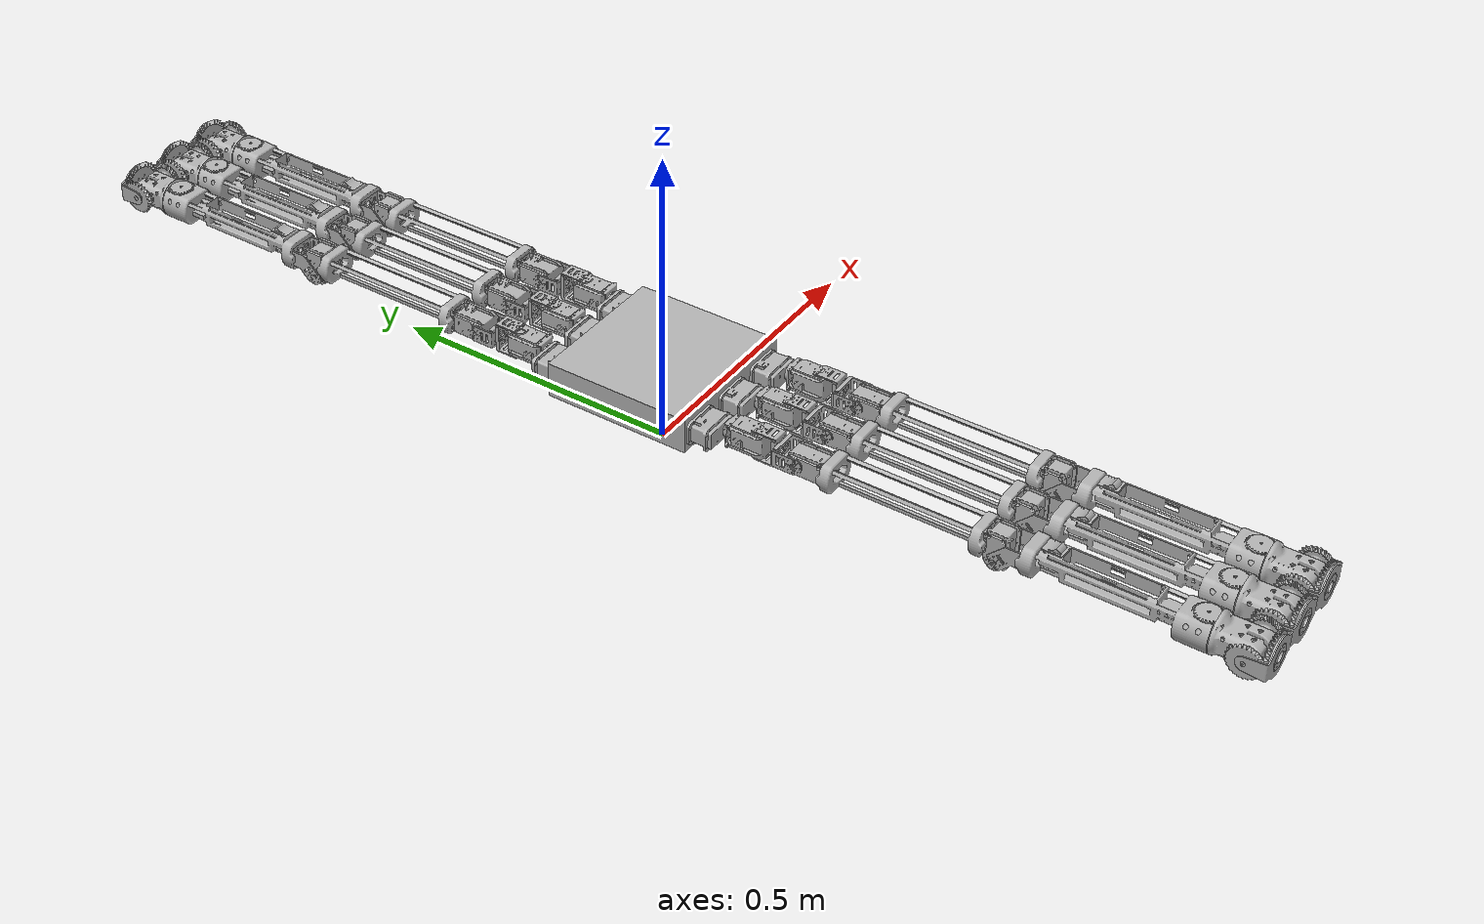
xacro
<?xml version="1.0" ?>
<robot name="romerin" xmlns:xacro="http://www.ros.org/wiki/xacro">

<xacro:include filename="$(find romerin_description)/urdf/materials.xacro" />
<xacro:include filename="$(find romerin_description)/urdf/macros.xacro" />
<xacro:include filename="$(find romerin_description)/urdf/pata.xacro" />
<xacro:include filename="$(find romerin_description)/urdf/cuerpo.xacro" />
<xacro:include filename="$(find romerin_description)/urdf/romerin.gazebo" />
<!--xacro:include filename="$(find romerin_description)/urdf/romerin.trans" /-->
	<!--romerin.trans no se incluye porque su codigo se ha pegado en pata.xacro-->

<!-- Used for fixing robot to Gazebo 'base_link (frame reference)' -->
<link name="base_link"/>

<!-- Body -->
<xacro:body parent="base_link" child="cuerpo"/>

<!--Legs-->
<xacro:pata lr="r" num="1"/>
<xacro:pata lr="r" num="2"/>
<xacro:pata lr="r" num="3"/>
<xacro:pata lr="l" num="1"/>
<xacro:pata lr="l" num="2"/>
<xacro:pata lr="l" num="3"/>

</robot>

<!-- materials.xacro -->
<robot name="romerin" xmlns:xacro="http://www.ros.org/wiki/xacro" >

<material name="silver">
  <color rgba="0.700 0.700 0.700 1.000"/>
</material>

</robot>

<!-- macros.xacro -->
<robot name="centipede" xmlns:xacro="http://www.ros.org/wiki/xacro">

	<xacro:macro name="body" params="parent child">
		<joint name="fixed" type="fixed">
  			<origin rpy="0 0 0" xyz="0 0 0.1"/>
    		<parent link="${parent}"/>
    	    <child link="${child}"/>
		</joint>
	</xacro:macro>

</robot>

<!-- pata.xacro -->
<robot name="pata" xmlns:xacro="http://www.ros.org/wiki/xacro">

<!--xacro:include filename="$(find patacuerpo_description)/urdf/patacuerpo.trans" /-->

<xacro:property name="PI" value="3.1415926535897931"/>

<xacro:macro name="pata" params="lr num">
	<!--lr: izda o dcha; num: n de pata-->

<link name="enganche_${lr}_${num}">
  <inertial>
	<origin rpy="0 0 0" xyz="-0.0008835638202414636 -0.023026438950210004 7.162326287613041e-14"/>
	<mass value="0.6779958201620729"/>
	<inertia ixx="0.000178" ixy="2e-06" ixz="-0.0" iyy="0.000263" iyz="0.0" izz="0.000323"/>
  </inertial>
  <visual>
	<origin rpy="0 0 0" xyz="-7.5e-05 0.119 -0.03"/>
	<geometry>
	  <mesh filename="package://patacuerpo_description/meshes/enganche_1.stl" scale="0.001 0.001 0.001"/>
	</geometry>
	<material name="silver"/>
  </visual>
  <collision>
	<origin rpy="0 0 0" xyz="-7.5e-05 0.119 -0.03"/>
	<geometry>
	  <mesh filename="package://patacuerpo_description/meshes/enganche_1.stl" scale="0.001 0.001 0.001"/>
	</geometry>
  </collision>
</link>

<link name="Component2_${lr}_${num}">
  <inertial>
	<origin rpy="0 0 0" xyz="-3.327743548876133e-06 -0.003686600354462388 -0.0006153217354371195"/>
	<mass value="0.04057327410573066"/>
	<inertia ixx="3e-06" ixy="-0.0" ixz="0.0" iyy="8e-06" iyz="-0.0" izz="6e-06"/>
  </inertial>
  <visual>
	<origin rpy="0 0 0" xyz="-0.015325 0.1662 -0.03"/>
	<geometry>
	  <mesh filename="package://patacuerpo_description/meshes/Component2_1.stl" scale="0.001 0.001 0.001"/>
	</geometry>
	<material name="silver"/>
  </visual>
  <collision>
	<origin rpy="0 0 0" xyz="-0.015325 0.1662 -0.03"/>
	<geometry>
	  <mesh filename="package://patacuerpo_description/meshes/Component2_1.stl" scale="0.001 0.001 0.001"/>
	</geometry>
  </collision>
</link>

<link name="Component3_${lr}_${num}">
  <inertial>
	<origin rpy="0 0 0" xyz="0.017082566975035966 -0.030175162564449715 -0.011000062135107003"/>
	<mass value="0.5890018112407169"/>
	<inertia ixx="0.000207" ixy="-3e-06" ixz="-0.0" iyy="0.000143" iyz="-0.0" izz="0.000248"/>
  </inertial>
  <visual>
	<origin rpy="0 0 0" xyz="0.001664 0.1762 -0.041"/>
	<geometry>
	  <mesh filename="package://patacuerpo_description/meshes/Component3_1.stl" scale="0.001 0.001 0.001"/>
	</geometry>
	<material name="silver"/>
  </visual>
  <collision>
	<origin rpy="0 0 0" xyz="0.001664 0.1762 -0.041"/>
	<geometry>
	  <mesh filename="package://patacuerpo_description/meshes/Component3_1.stl" scale="0.001 0.001 0.001"/>
	</geometry>
  </collision>
</link>

<link name="Component4_${lr}_${num}">
  <inertial>
	<origin rpy="0 0 0" xyz="0.023500272152248945 -0.02564620791836894 -1.8395030568219006e-09"/>
	<mass value="0.05208378573426527"/>
	<inertia ixx="1.3e-05" ixy="0.0" ixz="0.0" iyy="2.6e-05" iyz="-0.0" izz="2.7e-05"/>
  </inertial>
  <visual>
	<origin rpy="0 0 0" xyz="0.008164 0.2215 -0.03"/>
	<geometry>
	  <mesh filename="package://patacuerpo_description/meshes/Component4_1.stl" scale="0.001 0.001 0.001"/>
	</geometry>
	<material name="silver"/>
  </visual>
  <collision>
	<origin rpy="0 0 0" xyz="0.008164 0.2215 -0.03"/>
	<geometry>
	  <mesh filename="package://patacuerpo_description/meshes/Component4_1.stl" scale="0.001 0.001 0.001"/>
	</geometry>
  </collision>
</link>

<link name="Component5_${lr}_${num}">
  <inertial>
	<origin rpy="0 0 0" xyz="2.7321655199363803e-07 -0.010353792081704394 7.750037417375566e-10"/>
	<mass value="0.05208378573425636"/>
	<inertia ixx="2.7e-05" ixy="-0.0" ixz="-0.0" iyy="2.6e-05" iyz="-0.0" izz="1.3e-05"/>
  </inertial>
  <visual>
	<origin rpy="0 0 0" xyz="-0.015336 0.2575 -0.03"/>
	<geometry>
	  <mesh filename="package://patacuerpo_description/meshes/Component5_1.stl" scale="0.001 0.001 0.001"/>
	</geometry>
	<material name="silver"/>
  </visual>
  <collision>
	<origin rpy="0 0 0" xyz="-0.015336 0.2575 -0.03"/>
	<geometry>
	  <mesh filename="package://patacuerpo_description/meshes/Component5_1.stl" scale="0.001 0.001 0.001"/>
	</geometry>
  </collision>
</link>

<link name="Component6_${lr}_${num}">
  <inertial>
	<origin rpy="0 0 0" xyz="2.7175869793220897e-07 -0.015124778672136407 -0.023582296616284523"/>
	<mass value="0.5890018112407189"/>
	<inertia ixx="0.000248" ixy="0.0" ixz="0.0" iyy="0.000143" iyz="-3e-06" izz="0.000207"/>
  </inertial>
  <visual>
	<origin rpy="0 0 0" xyz="-0.015336 0.2935 -0.0535"/>
	<geometry>
	  <mesh filename="package://patacuerpo_description/meshes/Component6_1.stl" scale="0.001 0.001 0.001"/>
	</geometry>
	<material name="silver"/>
  </visual>
  <collision>
	<origin rpy="0 0 0" xyz="-0.015336 0.2935 -0.0535"/>
	<geometry>
	  <mesh filename="package://patacuerpo_description/meshes/Component6_1.stl" scale="0.001 0.001 0.001"/>
	</geometry>
  </collision>
</link>

<link name="Component7_${lr}_${num}">
  <inertial>
	<origin rpy="0 0 0" xyz="0.009679299327890243 -0.13369995640458926 0.016988725070571378"/>
	<mass value="0.8047904243141957"/>
	<inertia ixx="0.010342" ixy="-0.0" ixz="0.0" iyy="0.000455" iyz="0.0" izz="0.010228"/>
  </inertial>
  <visual>
	<origin rpy="0 0 0" xyz="-0.004336 0.3388 -0.013"/>
	<geometry>
	  <mesh filename="package://patacuerpo_description/meshes/Component7_1.stl" scale="0.001 0.001 0.001"/>
	</geometry>
	<material name="silver"/>
  </visual>
  <collision>
	<origin rpy="0 0 0" xyz="-0.004336 0.3388 -0.013"/>
	<geometry>
	  <mesh filename="package://patacuerpo_description/meshes/Component7_1.stl" scale="0.001 0.001 0.001"/>
	</geometry>
  </collision>
</link>

<link name="Component8_${lr}_${num}">
  <inertial>
	<origin rpy="0 0 0" xyz="0.024875371372866634 -0.017300001288044542 -0.017039615317225636"/>
	<mass value="0.5890018112407238"/>
	<inertia ixx="0.000143" ixy="0.0" ixz="-3e-06" iyy="0.000248" iyz="-0.0" izz="0.000207"/>
  </inertial>
  <visual>
	<origin rpy="0 0 0" xyz="0.002664 0.6062 -0.046977"/>
	<geometry>
	  <mesh filename="package://patacuerpo_description/meshes/Component8_1.stl" scale="0.001 0.001 0.001"/>
	</geometry>
	<material name="silver"/>
  </visual>
  <collision>
	<origin rpy="0 0 0" xyz="0.002664 0.6062 -0.046977"/>
	<geometry>
	  <mesh filename="package://patacuerpo_description/meshes/Component8_1.stl" scale="0.001 0.001 0.001"/>
	</geometry>
  </collision>
</link>

<link name="Component9_${lr}_${num}">
  <inertial>
	<origin rpy="0 0 0" xyz="-0.01880335468036301 -0.030302739995931915 0.023500457245787268"/>
	<mass value="0.07064606392588994"/>
	<inertia ixx="5.1e-05" ixy="-5e-06" ixz="-0.0" iyy="4.1e-05" iyz="0.0" izz="2.9e-05"/>
  </inertial>
  <visual>
	<origin rpy="0 0 0" xyz="-0.037336 0.6235 -0.007977"/>
	<geometry>
	  <mesh filename="package://patacuerpo_description/meshes/Component9_1.stl" scale="0.001 0.001 0.001"/>
	</geometry>
	<material name="silver"/>
  </visual>
  <collision>
	<origin rpy="0 0 0" xyz="-0.037336 0.6235 -0.007977"/>
	<geometry>
	  <mesh filename="package://patacuerpo_description/meshes/Component9_1.stl" scale="0.001 0.001 0.001"/>
	</geometry>
  </collision>
</link>

<link name="Component10_${lr}_${num}">
  <inertial>
	<origin rpy="0 0 0" xyz="-0.0017135454980912197 -0.15691041401299965 -0.0007575519701589137"/>
	<mass value="1.969918180322282"/>
	<inertia ixx="0.021818" ixy="0.000391" ixz="3e-06" iyy="0.000894" iyz="-0.000131" izz="0.021632"/>
  </inertial>
  <visual>
	<origin rpy="0 0 0" xyz="-0.015336 0.6715 -0.031477"/>
	<geometry>
	  <mesh filename="package://patacuerpo_description/meshes/Component10_1.stl" scale="0.001 0.001 0.001"/>
	</geometry>
	<material name="silver"/>
  </visual>
  <collision>
	<origin rpy="0 0 0" xyz="-0.015336 0.6715 -0.031477"/>
	<geometry>
	  <mesh filename="package://patacuerpo_description/meshes/Component10_1.stl" scale="0.001 0.001 0.001"/>
	</geometry>
  </collision>
</link>

<link name="Component11_${lr}_${num}">
  <inertial>
	<origin rpy="0 0 0" xyz="0.007623821851629745 -2.9323939987335734e-07 -2.1019877097794293e-06"/>
	<mass value="0.04831387336471295"/>
	<inertia ixx="7e-06" ixy="-0.0" ixz="-0.0" iyy="5e-06" iyz="-0.0" izz="5e-06"/>
  </inertial>
  <visual>
	<origin rpy="0 0 0" xyz="-0.0307 0.932519 -0.030023"/>
	<geometry>
	  <mesh filename="package://patacuerpo_description/meshes/Component11_1.stl" scale="0.001 0.001 0.001"/>
	</geometry>
	<material name="silver"/>
  </visual>
  <collision>
	<origin rpy="0 0 0" xyz="-0.0307 0.932519 -0.030023"/>
	<geometry>
	  <mesh filename="package://patacuerpo_description/meshes/Component11_1.stl" scale="0.001 0.001 0.001"/>
	</geometry>
  </collision>
</link>

<link name="Component13_${lr}_${num}">
  <inertial>
	<origin rpy="0 0 0" xyz="-7.046964762767727e-05 -0.025651671856746106 -8.711431092059407e-06"/>
	<mass value="0.9228320571083133"/>
	<inertia ixx="0.00065" ixy="-1e-06" ixz="0.0" iyy="0.000398" iyz="0.0" izz="0.000533"/>
  </inertial>
  <visual>
	<origin rpy="0 0 0" xyz="-0.015336 0.956561 -0.030023"/>
	<geometry>
	  <mesh filename="package://patacuerpo_description/meshes/Component13_1.stl" scale="0.001 0.001 0.001"/>
	</geometry>
	<material name="silver"/>
  </visual>
  <collision>
	<origin rpy="0 0 0" xyz="-0.015336 0.956561 -0.030023"/>
	<geometry>
	  <mesh filename="package://patacuerpo_description/meshes/Component13_1.stl" scale="0.001 0.001 0.001"/>
	</geometry>
  </collision>
</link>

<link name="Component14_${lr}_${num}">
  <inertial>
	<origin rpy="0 0 0" xyz="-1.0024119439892842e-07 -1.2555316453166654e-07 -0.0016568293364659743"/>
	<mass value="0.11553702060403329"/>
	<inertia ixx="2.9e-05" ixy="-0.0" ixz="-0.0" iyy="2.9e-05" iyz="0.0" izz="3.6e-05"/>
  </inertial>
  <visual>
	<origin rpy="0 0 0" xyz="-0.01507 1.002493 0.001477"/>
	<geometry>
	  <mesh filename="package://patacuerpo_description/meshes/Component14_1.stl" scale="0.001 0.001 0.001"/>
	</geometry>
	<material name="silver"/>
  </visual>
  <collision>
	<origin rpy="0 0 0" xyz="-0.01507 1.002493 0.001477"/>
	<geometry>
	  <mesh filename="package://patacuerpo_description/meshes/Component14_1.stl" scale="0.001 0.001 0.001"/>
	</geometry>
  </collision>
</link>

<link name="Component17_${lr}_${num}">
  <inertial>
	<origin rpy="0 0 0" xyz="-1.2322251817693808e-07 0.003859592424359626 -4.557914220180981e-07"/>
	<mass value="0.22106688110468858"/>
	<inertia ixx="6.7e-05" ixy="0.0" ixz="-0.0" iyy="0.000129" iyz="-0.0" izz="6.7e-05"/>
  </inertial>
  <visual>
	<origin rpy="0 0 0" xyz="-0.01507 1.035027 -0.030023"/>
	<geometry>
	  <mesh filename="package://patacuerpo_description/meshes/Component17_1.stl" scale="0.001 0.001 0.001"/>
	</geometry>
	<material name="silver"/>
  </visual>
  <collision>
	<origin rpy="0 0 0" xyz="-0.01507 1.035027 -0.030023"/>
	<geometry>
	  <mesh filename="package://patacuerpo_description/meshes/Component17_1.stl" scale="0.001 0.001 0.001"/>
	</geometry>
  </collision>
</link>

<link name="Component12_${lr}_${num}">
  <inertial>
	<origin rpy="0 0 0" xyz="-0.0018786122979095599 3.870314608800385e-07 1.0481699663222876e-06"/>
	<mass value="0.044964172872987526"/>
	<inertia ixx="7e-06" ixy="0.0" ixz="-0.0" iyy="4e-06" iyz="0.0" izz="4e-06"/>
  </inertial>
  <visual>
	<origin rpy="0 0 0" xyz="0.007027 0.932502 -0.030032"/>
	<geometry>
	  <mesh filename="package://patacuerpo_description/meshes/Component12_1.stl" scale="0.001 0.001 0.001"/>
	</geometry>
	<material name="silver"/>
  </visual>
  <collision>
	<origin rpy="0 0 0" xyz="0.007027 0.932502 -0.030032"/>
	<geometry>
	  <mesh filename="package://patacuerpo_description/meshes/Component12_1.stl" scale="0.001 0.001 0.001"/>
	</geometry>
  </collision>
</link>

<link name="Component15_${lr}_${num}">
  <inertial>
	<origin rpy="0 0 0" xyz="-9.926848198830995e-08 -7.599328972318631e-06 0.0030593073916383787"/>
	<mass value="0.11084533748383699"/>
	<inertia ixx="1.9e-05" ixy="0.0" ixz="0.0" iyy="1.9e-05" iyz="0.0" izz="3.6e-05"/>
  </inertial>
  <visual>
	<origin rpy="0 0 0" xyz="-0.01507 1.00247 -0.061523"/>
	<geometry>
	  <mesh filename="package://patacuerpo_description/meshes/Component15_1.stl" scale="0.001 0.001 0.001"/>
	</geometry>
	<material name="silver"/>
  </visual>
  <collision>
	<origin rpy="0 0 0" xyz="-0.01507 1.00247 -0.061523"/>
	<geometry>
	  <mesh filename="package://patacuerpo_description/meshes/Component15_1.stl" scale="0.001 0.001 0.001"/>
	</geometry>
  </collision>
</link>

<link name="Component16_${lr}_${num}">
  <inertial>
	<origin rpy="0 0 0" xyz="4.663110592786901e-06 -0.024171205343439528 -0.03812145579226034"/>
	<mass value="0.07272237784571686"/>
	<inertia ixx="8.5e-05" ixy="0.0" ixz="0.0" iyy="8.6e-05" iyz="-0.0" izz="2.6e-05"/>
  </inertial>
  <visual>
	<origin rpy="0 0 0" xyz="-0.01507 1.002478 -0.068144"/>
	<geometry>
	  <mesh filename="package://patacuerpo_description/meshes/Component16_1.stl" scale="0.001 0.001 0.001"/>
	</geometry>
	<material name="silver"/>
  </visual>
  <collision>
	<origin rpy="0 0 0" xyz="-0.01507 1.002478 -0.068144"/>
	<geometry>
	  <mesh filename="package://patacuerpo_description/meshes/Component16_1.stl" scale="0.001 0.001 0.001"/>
	</geometry>
  </collision>
</link>

	<!--Primera joint: cuerpo-pata-->
<joint name="Rigid0_${lr}_${num}" type="fixed">
  <parent link="cuerpo"/>
  <child link="enganche_${lr}_${num}"/>
    	<xacro:if value="${lr == 'l'}">
			<xacro:if value="${num == 1}">
      			<origin rpy="${PI} 0 0" xyz="0.085075 0.119 0.03"/>
			</xacro:if>
			<xacro:if value="${num == 2}">
      			<origin rpy="${PI} 0 0" xyz="7.5e-05 0.119 0.03"/>
			</xacro:if>
			<xacro:if value="${num == 3}">
      			<origin rpy="${PI} 0 0" xyz="-0.084925 0.119 0.03"/>
			</xacro:if>
    	</xacro:if>
    	<xacro:if value="${lr == 'r'}">
			<xacro:if value="${num == 1}">
      			<origin rpy="0 0 0" xyz="0.085075 -0.119 0.03"/>
			</xacro:if>
			<xacro:if value="${num == 2}">
 				<origin rpy="0 0 0" xyz="7.5e-05 -0.119 0.03"/>
			</xacro:if>
			<xacro:if value="${num == 3}">
      			<origin rpy="0 0 0" xyz="-0.084925 -0.119 0.03"/>
			</xacro:if>
    	</xacro:if>
</joint>

<joint name="Rigid1_${lr}_${num}" type="fixed">
	<xacro:if value="${lr == 'r'}">
  		<origin rpy="0 ${PI/2}  0" xyz="0.01525 -0.0472 0.0"/>
	</xacro:if>
	<xacro:if value="${lr == 'l'}">
		<origin rpy="0 ${3*PI/2} 0" xyz="0.01525 -0.0472 0.0"/>
	</xacro:if>
  <parent link="enganche_${lr}_${num}"/>
  <child link="Component2_${lr}_${num}"/>
</joint>

<joint name="Rigid2_${lr}_${num}" type="fixed">
  <origin rpy="0 0 0" xyz="-0.016989 -0.01 0.011"/>
  <parent link="Component2_${lr}_${num}"/>
  <child link="Component3_${lr}_${num}"/>
</joint>

<joint name="Rev3_${lr}_${num}" type="revolute">
  <origin rpy="0 0 0" xyz="-0.0065 -0.0453 -0.011"/>
  <parent link="Component3_${lr}_${num}"/>
  <child link="Component4_${lr}_${num}"/>
  <axis xyz="-1.0 -0.0 0.0"/>
  <limit effort="100" lower="-1.919862" upper="1.919862" velocity="100"/>
</joint>

<joint name="Rigid4_${lr}_${num}" type="fixed">
  <origin rpy="0 0 0" xyz="0.0235 -0.036 0.0"/>
  <parent link="Component4_${lr}_${num}"/>
  <child link="Component5_${lr}_${num}"/>
</joint>

<joint name="Rev5_${lr}_${num}" type="revolute">
  <origin rpy="0 0 0" xyz="0.0 -0.036 0.0235"/>
  <parent link="Component5_${lr}_${num}"/>
  <child link="Component6_${lr}_${num}"/>
  <axis xyz="-0.0 0.0 -1.0"/>
  <limit effort="100" lower="-1.919862" upper="1.919862" velocity="100"/>
</joint>

<joint name="Rigid6_${lr}_${num}" type="fixed">
  <origin rpy="0 0 0" xyz="-0.011 -0.0453 -0.0405"/>
  <parent link="Component6_${lr}_${num}"/>
  <child link="Component7_${lr}_${num}"/>
</joint>

<joint name="Rigid7_${lr}_${num}" type="fixed">
  <origin rpy="0 0 0" xyz="-0.007 -0.2674 0.033977"/>
  <parent link="Component7_${lr}_${num}"/>
  <child link="Component8_${lr}_${num}"/>
</joint>

<joint name="Rev8_${lr}_${num}" type="revolute">
  <origin rpy="0 0 0" xyz="0.04 -0.0173 -0.039"/>
  <parent link="Component8_${lr}_${num}"/>
  <child link="Component9_${lr}_${num}"/>
  <axis xyz="-0.0 -0.0 1.0"/>
  <limit effort="100" lower="-0.785398" upper="3.141593" velocity="100"/>
</joint>

<joint name="Rigid9_${lr}_${num}" type="fixed">
  <origin rpy="0 0 0" xyz="-0.022 -0.048 0.0235"/>
  <parent link="Component9_${lr}_${num}"/>
  <child link="Component10_${lr}_${num}"/>
</joint>

<joint name="Rev10_${lr}_${num}" type="continuous">
  <origin rpy="0 0 0" xyz="0.015364 -0.261019 -0.001454"/>
  <parent link="Component10_${lr}_${num}"/>
  <child link="Component11_${lr}_${num}"/>
  <axis xyz="1.0 0.0 -0.0"/>
</joint>

<joint name="Rigid11_${lr}_${num}" type="fixed">
  <origin rpy="0 0 0" xyz="0.0 -0.285061 -0.001454"/>
  <parent link="Component10_${lr}_${num}"/>
  <child link="Component13_${lr}_${num}"/>
</joint>

<joint name="Rev12_${lr}_${num}" type="continuous">
  <origin rpy="0 0 0" xyz="-0.000266 -0.045932 -0.0315"/>
  <parent link="Component13_${lr}_${num}"/>
  <child link="Component14_${lr}_${num}"/>
  <axis xyz="-0.0 0.0 -1.0"/>
</joint>

<joint name="Rev13_${lr}_${num}" type="continuous">
  <origin rpy="0 0 0" xyz="0.0 -0.032549 -0.038121"/>
  <parent link="Component16_${lr}_${num}"/>
  <child link="Component17_${lr}_${num}"/>
  <axis xyz="-0.0 1.0 -0.0"/>
</joint>

<joint name="Rev14_${lr}_${num}" type="continuous">
  <origin rpy="0 0 0" xyz="-0.022363 -0.261002 -0.001445"/>
  <parent link="Component10_${lr}_${num}"/>
  <child link="Component12_${lr}_${num}"/>
  <axis xyz="-1.0 0.0 0.0"/>
</joint>

<joint name="Rev15_${lr}_${num}" type="continuous">
  <origin rpy="0 0 0" xyz="-0.000266 -0.045909 0.0315"/>
  <parent link="Component13_${lr}_${num}"/>
  <child link="Component15_${lr}_${num}"/>
  <axis xyz="0.0 -0.0 1.0"/>
</joint>

<joint name="Rev16_${lr}_${num}" type="revolute">
  <origin rpy="0 0 0" xyz="0.0 -8e-06 0.006621"/>
  <parent link="Component15_${lr}_${num}"/>
  <child link="Component16_${lr}_${num}"/>
  <axis xyz="0.0 -0.0 1.0"/>
  <limit effort="100" lower="-1.570796" upper="1.570796" velocity="100"/>
</joint>

<transmission name="Rev3_tran_${lr}_${num}">
  <type>transmission_interface/SimpleTransmission</type>
  <joint name="Rev3_${lr}_${num}">
    <hardwareInterface>hardware_interface/EffortJointInterface</hardwareInterface>
  </joint>
  <actuator name="Rev3_actr_${lr}_${num}">
    <hardwareInterface>hardware_interface/EffortJointInterface</hardwareInterface>
    <mechanicalReduction>1</mechanicalReduction>
  </actuator>
</transmission>

<transmission name="Rev5_tran_${lr}_${num}">
  <type>transmission_interface/SimpleTransmission</type>
  <joint name="Rev5_${lr}_${num}">
    <hardwareInterface>hardware_interface/EffortJointInterface</hardwareInterface>
  </joint>
  <actuator name="Rev5_actr_${lr}_${num}">
    <hardwareInterface>hardware_interface/EffortJointInterface</hardwareInterface>
    <mechanicalReduction>1</mechanicalReduction>
  </actuator>
</transmission>

<transmission name="Rev8_tran_${lr}_${num}">
  <type>transmission_interface/SimpleTransmission</type>
  <joint name="Rev8_${lr}_${num}">
    <hardwareInterface>hardware_interface/EffortJointInterface</hardwareInterface>
  </joint>
  <actuator name="Rev8_actr_${lr}_${num}">
    <hardwareInterface>hardware_interface/EffortJointInterface</hardwareInterface>
    <mechanicalReduction>1</mechanicalReduction>
  </actuator>
</transmission>

<transmission name="Rev10_tran_${lr}_${num}">
  <type>transmission_interface/SimpleTransmission</type>
  <joint name="Rev10_${lr}_${num}">
    <hardwareInterface>hardware_interface/EffortJointInterface</hardwareInterface>
  </joint>
  <actuator name="Rev10_actr_${lr}_${num}">
    <hardwareInterface>hardware_interface/EffortJointInterface</hardwareInterface>
    <mechanicalReduction>1</mechanicalReduction>
  </actuator>
</transmission>

<transmission name="Rev12_tran_${lr}_${num}">
  <type>transmission_interface/SimpleTransmission</type>
  <joint name="Rev12_${lr}_${num}">
    <hardwareInterface>hardware_interface/EffortJointInterface</hardwareInterface>
  </joint>
  <actuator name="Rev12_actr_${lr}_${num}">
    <hardwareInterface>hardware_interface/EffortJointInterface</hardwareInterface>
    <mechanicalReduction>1</mechanicalReduction>
  </actuator>
</transmission>

<transmission name="Rev13_tran_${lr}_${num}">
  <type>transmission_interface/SimpleTransmission</type>
  <joint name="Rev13_${lr}_${num}">
    <hardwareInterface>hardware_interface/EffortJointInterface</hardwareInterface>
  </joint>
  <actuator name="Rev13_actr_${lr}_${num}">
    <hardwareInterface>hardware_interface/EffortJointInterface</hardwareInterface>
    <mechanicalReduction>1</mechanicalReduction>
  </actuator>
</transmission>

<transmission name="Rev14_tran_${lr}_${num}">
  <type>transmission_interface/SimpleTransmission</type>
  <joint name="Rev14_${lr}_${num}">
    <hardwareInterface>hardware_interface/EffortJointInterface</hardwareInterface>
  </joint>
  <actuator name="Rev14_actr_${lr}_${num}">
    <hardwareInterface>hardware_interface/EffortJointInterface</hardwareInterface>
    <mechanicalReduction>1</mechanicalReduction>
  </actuator>
</transmission>

<transmission name="Rev15_tran_${lr}_${num}">
  <type>transmission_interface/SimpleTransmission</type>
  <joint name="Rev15_${lr}_${num}">
    <hardwareInterface>hardware_interface/EffortJointInterface</hardwareInterface>
  </joint>
  <actuator name="Rev15_actr_${lr}_${num}">
    <hardwareInterface>hardware_interface/EffortJointInterface</hardwareInterface>
    <mechanicalReduction>1</mechanicalReduction>
  </actuator>
</transmission>

<transmission name="Rev16_tran_${lr}_${num}">
  <type>transmission_interface/SimpleTransmission</type>
  <joint name="Rev16_${lr}_${num}">
    <hardwareInterface>hardware_interface/EffortJointInterface</hardwareInterface>
  </joint>
  <actuator name="Rev16_actr_${lr}_${num}">
    <hardwareInterface>hardware_interface/EffortJointInterface</hardwareInterface>
    <mechanicalReduction>1</mechanicalReduction>
  </actuator>
</transmission>

</xacro:macro>

</robot>

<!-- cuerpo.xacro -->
<robot name="cuerpo" xmlns:xacro="http://www.ros.org/wiki/xacro">

<link name="cuerpo">
  <inertial>
	<origin rpy="0 0 0" xyz="1.2607010642475455e-06 -1.9705023201073385e-17 0.030000000000039998"/>
	<mass value="28.985638173838137"/>
	<inertia ixx="0.155393" ixy="-0.0" ixz="-0.0" iyy="0.159826" iyz="-0.0" izz="0.297615"/>
  </inertial>
  <visual>
	<origin rpy="0 0 0" xyz="0 0 0"/>
	<geometry>
	  <mesh filename="package://romerin_description/meshes/cuerpo.stl" scale="0.001 0.001 0.001"/>
	</geometry>
	<material name="silver"/>
  </visual>
  <collision>
	<origin rpy="0 0 0" xyz="0 0 0"/>
	<geometry>
	  <mesh filename="package://romerin_description/meshes/cuerpo.stl" scale="0.001 0.001 0.001"/>
	</geometry>
  </collision>
</link>

</robot>

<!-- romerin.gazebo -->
<robot name="romerin" xmlns:xacro="http://www.ros.org/wiki/xacro" >

<xacro:property name="body_color" value="Gazebo/Silver" />

<gazebo>
  <plugin filename="libgazebo_ros_control.so" name="control"/>
</gazebo>
	<!--En una entrada de foro ponen esa etiqueta robotNamespace pero en otra dicen que mejor no ponerla-->

<gazebo reference="base_link">
  <material>${body_color}</material>
  <mu1>0.2</mu1>
  <mu2>0.2</mu2>
  <selfCollide>true</selfCollide>
  <gravity>true</gravity>
</gazebo>

<gazebo reference="Component2_1">
  <material>${body_color}</material>
  <mu1>0.2</mu1>
  <mu2>0.2</mu2>
  <selfCollide>true</selfCollide>
</gazebo>

<gazebo reference="Component3_1">
  <material>${body_color}</material>
  <mu1>0.2</mu1>
  <mu2>0.2</mu2>
  <selfCollide>true</selfCollide>
</gazebo>

<gazebo reference="Component4_1">
  <material>${body_color}</material>
  <mu1>0.2</mu1>
  <mu2>0.2</mu2>
  <selfCollide>true</selfCollide>
</gazebo>

<gazebo reference="Component5_1">
  <material>${body_color}</material>
  <mu1>0.2</mu1>
  <mu2>0.2</mu2>
  <selfCollide>true</selfCollide>
</gazebo>

<gazebo reference="Component6_1">
  <material>${body_color}</material>
  <mu1>0.2</mu1>
  <mu2>0.2</mu2>
  <selfCollide>true</selfCollide>
</gazebo>

<gazebo reference="Component7_1">
  <material>${body_color}</material>
  <mu1>0.2</mu1>
  <mu2>0.2</mu2>
  <selfCollide>true</selfCollide>
</gazebo>

<gazebo reference="Component8_1">
  <material>${body_color}</material>
  <mu1>0.2</mu1>
  <mu2>0.2</mu2>
  <selfCollide>true</selfCollide>
</gazebo>

<gazebo reference="Component9_1">
  <material>${body_color}</material>
  <mu1>0.2</mu1>
  <mu2>0.2</mu2>
  <selfCollide>true</selfCollide>
</gazebo>

<gazebo reference="Component10_1">
  <material>${body_color}</material>
  <mu1>0.2</mu1>
  <mu2>0.2</mu2>
  <selfCollide>true</selfCollide>
</gazebo>

<gazebo reference="Component11_1">
  <material>${body_color}</material>
  <mu1>0.2</mu1>
  <mu2>0.2</mu2>
  <selfCollide>true</selfCollide>
</gazebo>

<gazebo reference="Component13_1">
  <material>${body_color}</material>
  <mu1>0.2</mu1>
  <mu2>0.2</mu2>
  <selfCollide>true</selfCollide>
</gazebo>

<gazebo reference="Component14_1">
  <material>${body_color}</material>
  <mu1>0.2</mu1>
  <mu2>0.2</mu2>
  <selfCollide>true</selfCollide>
</gazebo>

<gazebo reference="Component17_1">
  <material>${body_color}</material>
  <mu1>0.2</mu1>
  <mu2>0.2</mu2>
  <selfCollide>true</selfCollide>
</gazebo>

<gazebo reference="Component12_1">
  <material>${body_color}</material>
  <mu1>0.2</mu1>
  <mu2>0.2</mu2>
  <selfCollide>true</selfCollide>
</gazebo>

<gazebo reference="Component15_1">
  <material>${body_color}</material>
  <mu1>0.2</mu1>
  <mu2>0.2</mu2>
  <selfCollide>true</selfCollide>
</gazebo>

<gazebo reference="Component16_1">
  <material>${body_color}</material>
  <mu1>0.2</mu1>
  <mu2>0.2</mu2>
  <selfCollide>true</selfCollide>
</gazebo>

<gazebo reference="enganche_1">
  <material>${body_color}</material>
  <mu1>0.2</mu1>
  <mu2>0.2</mu2>
  <selfCollide>true</selfCollide>
</gazebo>

</robot>
